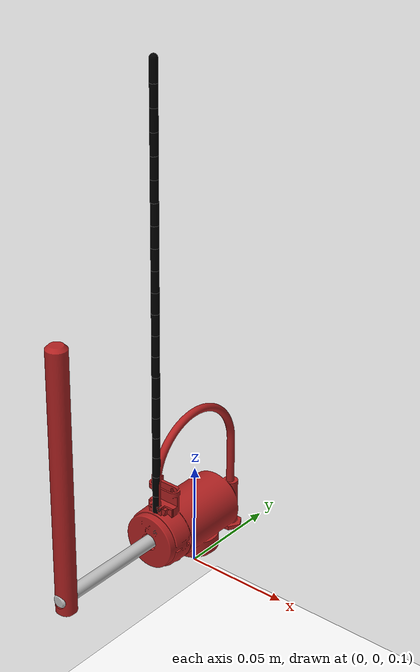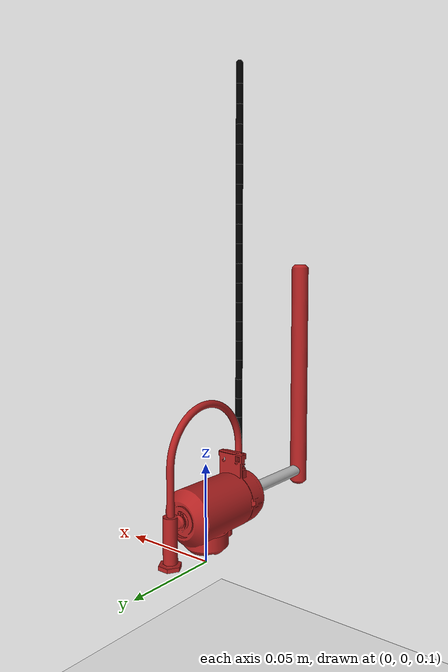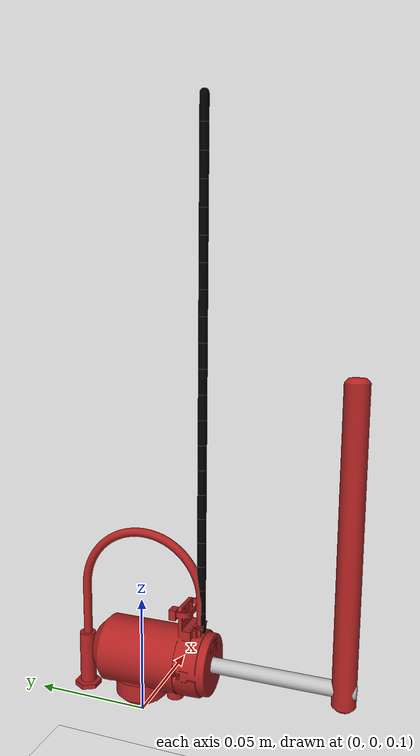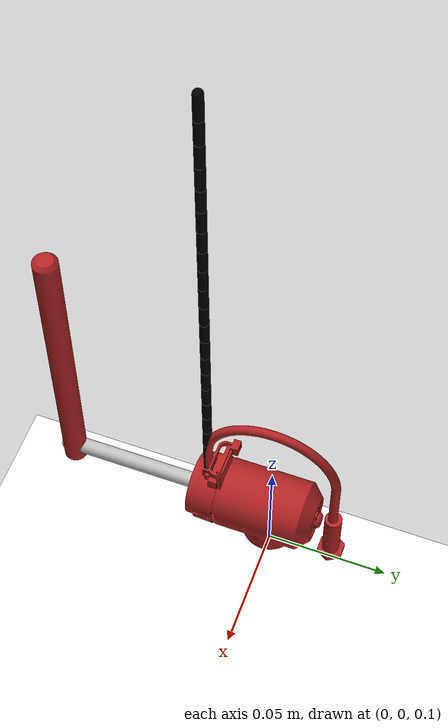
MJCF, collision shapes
<?xml version="1.0" encoding="utf-8"?>
<mujoco model="qube">
    <compiler angle="radian" meshdir="../meshes/" />
    <size njmax="500" nconmax="100" />
    <asset>
        <texture type="skybox" builtin="gradient" rgb1="0.44 0.85 0.56" rgb2="0.46 0.87 0.58" width="32" height="192" />
        <texture type="2d" name="texbody" builtin="flat" rgb1="0 0 0" width="1024" height="1024" />
        <texture type="2d" name="texfloor" builtin="flat" rgb1="1 1 1" width="1024" height="1024" />
        <texture type="2d" name="texred" builtin="flat" rgb1="0.698 0.1333 0.1333" width="1024" height="1024" />
        <texture type="2d" name="texsilver" builtin="flat" rgb1="0.7529 0.7529 0.7529" width="512" height="512" />
        <material name="bodyMat" texture="texbody" specular="0.75" shininess="0.1" />
        <material name="floorMat" texture="texfloor" specular="0.75" shininess="0.3" />
        <material name="redMat" texture="texred" specular="1" shininess="0.9" />
        <material name="silverMat" texture="texsilver" specular="0.75" shininess="0.3" />
        <mesh name="qube0:base" file="../meshes/qube_block.stl" />
        <mesh name="qube0:motor" file="../meshes/qube_motor_with_cable.stl" />
        <mesh name="qube0:arm" file="../meshes/qube_arm_ml.stl" />
        <mesh name="qube0:pole" file="../meshes/qube_pole_ml.stl" />
    </asset>
    <worldbody>
        <geom name="ground" size="5 5 1" type="plane" contype="0" conaffinity="0" material="floorMat" />
        <camera name="view" pos="-5 -5 15" quat="0.663439 0.567899 0.316804 -0.370101" />
        <light pos="0.051036 -0.0321818 0.5" dir="0 0 -1" diffuse="0.8 0.8 0.8" specular="0.9 0.9 0.9" />
        <body name="body" pos="0 0 0">
            <inertial pos="-0.000123329 0.00106812 0.0550479" quat="0.992378 0.0866092 0.00277942 -0.0876238" mass="1.1" diaginertia="0.00195952 0.00195133 0.0016488" />
            <geom name="qube0:base" type="mesh" contype="0" conaffinity="0" condim="1" friction="0 0 0" material="bodyMat" mesh="qube0:base" />
            <body name="motor" pos="0 0 0.12672">
                <inertial pos="-5.45435e-05 -0.00568089 0.00569803" quat="0.673228 0.739431 -0.00224326 0.000917125" mass="0.0512548" diaginertia="2.26942e-05 1.37989e-05 1.20931e-05" />
                <joint name="base_motor" pos="0 0 0" axis="0 0 1" range="-90 90" />
                <geom name="qube0:motor" type="mesh" material="redMat" mesh="qube0:motor" />
                <body name="arm" pos="0 -0.054882 0">
                    <inertial pos="8.77776e-09 4.03949e-08 -1.49835e-07" quat="0.5 0.5 -0.5 0.5" mass="0.095" diaginertia="3.93678e-05 3.93678e-05 4.79711e-07" />
                    <joint name="arm_pole" pos="0 0 0" axis="0 1 0" range="-90 90" />
                    <geom name="qube0:arm" type="mesh" material="silverMat" mesh="qube0:arm" />
                    <body name="pole" pos="0 -0.030562 0">
                        <inertial pos="2.23818e-05 -3.94236e-08 0.0496698" mass="0.024" diaginertia="3.42313e-05 3.42252e-05 2.52484e-07" />
                        <geom name="qube0:pole" type="mesh" material="redMat" mesh="qube0:pole" />
                    </body>
                </body>
            </body>
        </body>
        <body name="B0" pos="0 -0.02672 0.14399" quat="-0.707107 0 0.707107 0">
            <inertial pos="0 0 0" quat="0.707107 0 0.707107 0" mass="0.00012242" diaginertia="1.52526e-09 1.52526e-09 2.01862e-10" />
            <geom name="G0" size="0.001816 0.005" quat="0.707107 0 0.707107 0" type="capsule" material="bodyMat" />
            <body name="B1" pos="0.01 0 0">
                <inertial pos="0 0 0" quat="0.707107 0 0.707107 0" mass="0.00012242" diaginertia="1.52526e-09 1.52526e-09 2.01862e-10" />
                <joint name="J0_1" pos="-0.005 0 0" axis="0 1 0" group="3" />
                <joint name="J1_1" pos="-0.005 0 0" axis="0 0 1" group="3" />
                <joint name="JT1" pos="-0.005 0 0" axis="1 0 0" group="3" stiffness="0.0001" />
                <geom name="G1" size="0.001816 0.005" quat="0.707107 0 0.707107 0" type="capsule" material="bodyMat" />
                <body name="B2" pos="0.01 0 0">
                    <inertial pos="0 0 0" quat="0.707107 0 0.707107 0" mass="0.00012242" diaginertia="1.52526e-09 1.52526e-09 2.01862e-10" />
                    <joint name="J0_2" pos="-0.005 0 0" axis="0 1 0" group="3" />
                    <joint name="J1_2" pos="-0.005 0 0" axis="0 0 1" group="3" />
                    <joint name="JT2" pos="-0.005 0 0" axis="1 0 0" group="3" stiffness="0.0001" />
                    <geom name="G2" size="0.001816 0.005" quat="0.707107 0 0.707107 0" type="capsule" material="bodyMat" />
                    <body name="B3" pos="0.01 0 0">
                        <inertial pos="0 0 0" quat="0.707107 0 0.707107 0" mass="0.00012242" diaginertia="1.52526e-09 1.52526e-09 2.01862e-10" />
                        <joint name="J0_3" pos="-0.005 0 0" axis="0 1 0" group="3" />
                        <joint name="J1_3" pos="-0.005 0 0" axis="0 0 1" group="3" />
                        <joint name="JT3" pos="-0.005 0 0" axis="1 0 0" group="3" stiffness="0.0001" />
                        <geom name="G3" size="0.001816 0.005" quat="0.707107 0 0.707107 0" type="capsule" material="bodyMat" />
                        <body name="B4" pos="0.01 0 0">
                            <inertial pos="0 0 0" quat="0.707107 0 0.707107 0" mass="0.00012242" diaginertia="1.52526e-09 1.52526e-09 2.01862e-10" />
                            <joint name="J0_4" pos="-0.005 0 0" axis="0 1 0" group="3" />
                            <joint name="J1_4" pos="-0.005 0 0" axis="0 0 1" group="3" />
                            <joint name="JT4" pos="-0.005 0 0" axis="1 0 0" group="3" stiffness="0.0001" />
                            <geom name="G4" size="0.001816 0.005" quat="0.707107 0 0.707107 0" type="capsule" material="bodyMat" />
                            <body name="B5" pos="0.01 0 0">
                                <inertial pos="0 0 0" quat="0.707107 0 0.707107 0" mass="0.00012242" diaginertia="1.52526e-09 1.52526e-09 2.01862e-10" />
                                <joint name="J0_5" pos="-0.005 0 0" axis="0 1 0" group="3" />
                                <joint name="J1_5" pos="-0.005 0 0" axis="0 0 1" group="3" />
                                <joint name="JT5" pos="-0.005 0 0" axis="1 0 0" group="3" stiffness="0.0001" />
                                <geom name="G5" size="0.001816 0.005" quat="0.707107 0 0.707107 0" type="capsule" material="bodyMat" />
                                <body name="B6" pos="0.01 0 0">
                                    <inertial pos="0 0 0" quat="0.707107 0 0.707107 0" mass="0.00012242" diaginertia="1.52526e-09 1.52526e-09 2.01862e-10" />
                                    <joint name="J0_6" pos="-0.005 0 0" axis="0 1 0" group="3" />
                                    <joint name="J1_6" pos="-0.005 0 0" axis="0 0 1" group="3" />
                                    <joint name="JT6" pos="-0.005 0 0" axis="1 0 0" group="3" stiffness="0.0001" />
                                    <geom name="G6" size="0.001816 0.005" quat="0.707107 0 0.707107 0" type="capsule" material="bodyMat" />
                                    <body name="B7" pos="0.01 0 0">
                                        <inertial pos="0 0 0" quat="0.707107 0 0.707107 0" mass="0.00012242" diaginertia="1.52526e-09 1.52526e-09 2.01862e-10" />
                                        <joint name="J0_7" pos="-0.005 0 0" axis="0 1 0" group="3" />
                                        <joint name="J1_7" pos="-0.005 0 0" axis="0 0 1" group="3" />
                                        <joint name="JT7" pos="-0.005 0 0" axis="1 0 0" group="3" stiffness="0.0001" />
                                        <geom name="G7" size="0.001816 0.005" quat="0.707107 0 0.707107 0" type="capsule" material="bodyMat" />
                                        <body name="B8" pos="0.01 0 0">
                                            <inertial pos="0 0 0" quat="0.707107 0 0.707107 0" mass="0.00012242" diaginertia="1.52526e-09 1.52526e-09 2.01862e-10" />
                                            <joint name="J0_8" pos="-0.005 0 0" axis="0 1 0" group="3" />
                                            <joint name="J1_8" pos="-0.005 0 0" axis="0 0 1" group="3" />
                                            <joint name="JT8" pos="-0.005 0 0" axis="1 0 0" group="3" stiffness="0.0001" />
                                            <geom name="G8" size="0.001816 0.005" quat="0.707107 0 0.707107 0" type="capsule" material="bodyMat" />
                                            <body name="B9" pos="0.01 0 0">
                                                <inertial pos="0 0 0" quat="0.707107 0 0.707107 0" mass="0.00012242" diaginertia="1.52526e-09 1.52526e-09 2.01862e-10" />
                                                <joint name="J0_9" pos="-0.005 0 0" axis="0 1 0" group="3" />
                                                <joint name="J1_9" pos="-0.005 0 0" axis="0 0 1" group="3" />
                                                <joint name="JT9" pos="-0.005 0 0" axis="1 0 0" group="3" stiffness="0.0001" />
                                                <geom name="G9" size="0.001816 0.005" quat="0.707107 0 0.707107 0" type="capsule" material="bodyMat" />
                                                <body name="B10" pos="0.01 0 0">
                                                    <inertial pos="0 0 0" quat="0.707107 0 0.707107 0" mass="0.00012242" diaginertia="1.52526e-09 1.52526e-09 2.01862e-10" />
                                                    <joint name="J0_10" pos="-0.005 0 0" axis="0 1 0" group="3" />
                                                    <joint name="J1_10" pos="-0.005 0 0" axis="0 0 1" group="3" />
                                                    <joint name="JT10" pos="-0.005 0 0" axis="1 0 0" group="3" stiffness="0.0001" />
                                                    <geom name="G10" size="0.001816 0.005" quat="0.707107 0 0.707107 0" type="capsule" material="bodyMat" />
                                                    <body name="B11" pos="0.01 0 0">
                                                        <inertial pos="0 0 0" quat="0.707107 0 0.707107 0" mass="0.00012242" diaginertia="1.52526e-09 1.52526e-09 2.01862e-10" />
                                                        <joint name="J0_11" pos="-0.005 0 0" axis="0 1 0" group="3" />
                                                        <joint name="J1_11" pos="-0.005 0 0" axis="0 0 1" group="3" />
                                                        <joint name="JT11" pos="-0.005 0 0" axis="1 0 0" group="3" stiffness="0.0001" />
                                                        <geom name="G11" size="0.001816 0.005" quat="0.707107 0 0.707107 0" type="capsule" material="bodyMat" />
                                                        <body name="B12" pos="0.01 0 0">
                                                            <inertial pos="0 0 0" quat="0.707107 0 0.707107 0" mass="0.00012242" diaginertia="1.52526e-09 1.52526e-09 2.01862e-10" />
                                                            <joint name="J0_12" pos="-0.005 0 0" axis="0 1 0" group="3" />
                                                            <joint name="J1_12" pos="-0.005 0 0" axis="0 0 1" group="3" />
                                                            <joint name="JT12" pos="-0.005 0 0" axis="1 0 0" group="3" stiffness="0.0001" />
                                                            <geom name="G12" size="0.001816 0.005" quat="0.707107 0 0.707107 0" type="capsule" material="bodyMat" />
                                                            <body name="B13" pos="0.01 0 0">
                                                                <inertial pos="0 0 0" quat="0.707107 0 0.707107 0" mass="0.00012242" diaginertia="1.52526e-09 1.52526e-09 2.01862e-10" />
                                                                <joint name="J0_13" pos="-0.005 0 0" axis="0 1 0" group="3" />
                                                                <joint name="J1_13" pos="-0.005 0 0" axis="0 0 1" group="3" />
                                                                <joint name="JT13" pos="-0.005 0 0" axis="1 0 0" group="3" stiffness="0.0001" />
                                                                <geom name="G13" size="0.001816 0.005" quat="0.707107 0 0.707107 0" type="capsule" material="bodyMat" />
                                                                <body name="B14" pos="0.01 0 0">
                                                                    <inertial pos="0 0 0" quat="0.707107 0 0.707107 0" mass="0.00012242" diaginertia="1.52526e-09 1.52526e-09 2.01862e-10" />
                                                                    <joint name="J0_14" pos="-0.005 0 0" axis="0 1 0" group="3" />
                                                                    <joint name="J1_14" pos="-0.005 0 0" axis="0 0 1" group="3" />
                                                                    <joint name="JT14" pos="-0.005 0 0" axis="1 0 0" group="3" stiffness="0.0001" />
                                                                    <geom name="G14" size="0.001816 0.005" quat="0.707107 0 0.707107 0" type="capsule" material="bodyMat" />
                                                                    <body name="B15" pos="0.01 0 0">
                                                                        <inertial pos="0 0 0" quat="0.707107 0 0.707107 0" mass="0.00012242" diaginertia="1.52526e-09 1.52526e-09 2.01862e-10" />
                                                                        <joint name="J0_15" pos="-0.005 0 0" axis="0 1 0" group="3" />
                                                                        <joint name="J1_15" pos="-0.005 0 0" axis="0 0 1" group="3" />
                                                                        <joint name="JT15" pos="-0.005 0 0" axis="1 0 0" group="3" stiffness="0.0001" />
                                                                        <geom name="G15" size="0.001816 0.005" quat="0.707107 0 0.707107 0" type="capsule" material="bodyMat" />
                                                                        <body name="B16" pos="0.01 0 0">
                                                                            <inertial pos="0 0 0" quat="0.707107 0 0.707107 0" mass="0.00012242" diaginertia="1.52526e-09 1.52526e-09 2.01862e-10" />
                                                                            <joint name="J0_16" pos="-0.005 0 0" axis="0 1 0" group="3" />
                                                                            <joint name="J1_16" pos="-0.005 0 0" axis="0 0 1" group="3" />
                                                                            <joint name="JT16" pos="-0.005 0 0" axis="1 0 0" group="3" stiffness="0.0001" />
                                                                            <geom name="G16" size="0.001816 0.005" quat="0.707107 0 0.707107 0" type="capsule" material="bodyMat" />
                                                                            <body name="B17" pos="0.01 0 0">
                                                                                <inertial pos="0 0 0" quat="0.707107 0 0.707107 0" mass="0.00012242" diaginertia="1.52526e-09 1.52526e-09 2.01862e-10" />
                                                                                <joint name="J0_17" pos="-0.005 0 0" axis="0 1 0" group="3" />
                                                                                <joint name="J1_17" pos="-0.005 0 0" axis="0 0 1" group="3" />
                                                                                <joint name="JT17" pos="-0.005 0 0" axis="1 0 0" group="3" stiffness="0.0001" />
                                                                                <geom name="G17" size="0.001816 0.005" quat="0.707107 0 0.707107 0" type="capsule" material="bodyMat" />
                                                                                <body name="B18" pos="0.01 0 0">
                                                                                    <inertial pos="0 0 0" quat="0.707107 0 0.707107 0" mass="0.00012242" diaginertia="1.52526e-09 1.52526e-09 2.01862e-10" />
                                                                                    <joint name="J0_18" pos="-0.005 0 0" axis="0 1 0" group="3" />
                                                                                    <joint name="J1_18" pos="-0.005 0 0" axis="0 0 1" group="3" />
                                                                                    <joint name="JT18" pos="-0.005 0 0" axis="1 0 0" group="3" stiffness="0.0001" />
                                                                                    <geom name="G18" size="0.001816 0.005" quat="0.707107 0 0.707107 0" type="capsule" material="bodyMat" />
                                                                                    <body name="B19" pos="0.01 0 0">
                                                                                        <inertial pos="0 0 0" quat="0.707107 0 0.707107 0" mass="0.00012242" diaginertia="1.52526e-09 1.52526e-09 2.01862e-10" />
                                                                                        <joint name="J0_19" pos="-0.005 0 0" axis="0 1 0" group="3" />
                                                                                        <joint name="J1_19" pos="-0.005 0 0" axis="0 0 1" group="3" />
                                                                                        <joint name="JT19" pos="-0.005 0 0" axis="1 0 0" group="3" stiffness="0.0001" />
                                                                                        <geom name="G19" size="0.001816 0.005" quat="0.707107 0 0.707107 0" type="capsule" material="bodyMat" />
                                                                                        <body name="B20" pos="0.01 0 0">
                                                                                            <inertial pos="0 0 0" quat="0.707107 0 0.707107 0" mass="0.00012242" diaginertia="1.52526e-09 1.52526e-09 2.01862e-10" />
                                                                                            <joint name="J0_20" pos="-0.005 0 0" axis="0 1 0" group="3" />
                                                                                            <joint name="J1_20" pos="-0.005 0 0" axis="0 0 1" group="3" />
                                                                                            <joint name="JT20" pos="-0.005 0 0" axis="1 0 0" group="3" stiffness="0.0001" />
                                                                                            <geom name="G20" size="0.001816 0.005" quat="0.707107 0 0.707107 0" type="capsule" material="bodyMat" />
                                                                                        </body>
                                                                                    </body>
                                                                                </body>
                                                                            </body>
                                                                        </body>
                                                                    </body>
                                                                </body>
                                                            </body>
                                                        </body>
                                                    </body>
                                                </body>
                                            </body>
                                        </body>
                                    </body>
                                </body>
                            </body>
                        </body>
                    </body>
                </body>
            </body>
        </body>
    </worldbody>
    <equality>
        <joint joint1="JT1" polycoef="0 1 0 0 0" />
        <joint joint1="JT2" polycoef="0 1 0 0 0" />
        <joint joint1="JT3" polycoef="0 1 0 0 0" />
        <joint joint1="JT4" polycoef="0 1 0 0 0" />
        <joint joint1="JT5" polycoef="0 1 0 0 0" />
        <joint joint1="JT6" polycoef="0 1 0 0 0" />
        <joint joint1="JT7" polycoef="0 1 0 0 0" />
        <joint joint1="JT8" polycoef="0 1 0 0 0" />
        <joint joint1="JT9" polycoef="0 1 0 0 0" />
        <joint joint1="JT10" polycoef="0 1 0 0 0" />
        <joint joint1="JT11" polycoef="0 1 0 0 0" />
        <joint joint1="JT12" polycoef="0 1 0 0 0" />
        <joint joint1="JT13" polycoef="0 1 0 0 0" />
        <joint joint1="JT14" polycoef="0 1 0 0 0" />
        <joint joint1="JT15" polycoef="0 1 0 0 0" />
        <joint joint1="JT16" polycoef="0 1 0 0 0" />
        <joint joint1="JT17" polycoef="0 1 0 0 0" />
        <joint joint1="JT18" polycoef="0 1 0 0 0" />
        <joint joint1="JT19" polycoef="0 1 0 0 0" />
        <joint joint1="JT20" polycoef="0 1 0 0 0" />
        <connect name="motor_cable" body1="motor" body2="B0" anchor="0 -0.02672 0.01727" />
        <connect name="base_cable" body1="body" body2="B10" anchor="0 0.026741 0.10546" />
    </equality>
    <actuator>
        <general name="motor_rotation" joint="base_motor" ctrllimited="true" ctrlrange="-18 18" biastype="affine" gainprm="0.0025 0 0 0 0 0 0 0 0 0" biasprm="0 0 -0.0025 0 0 0 0 0 0 0" />
    </actuator>
</mujoco>
